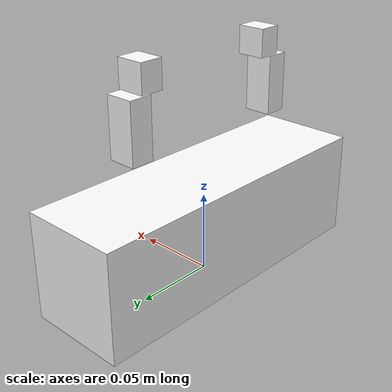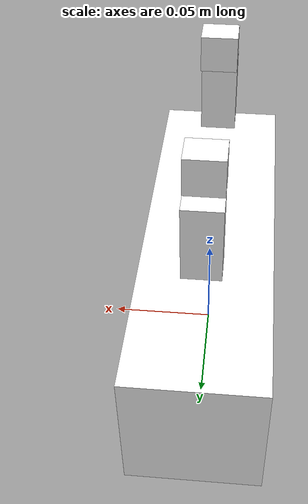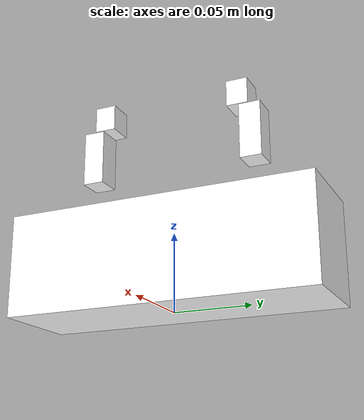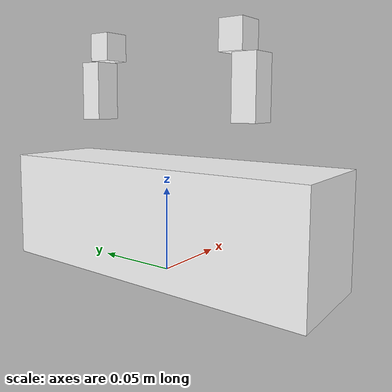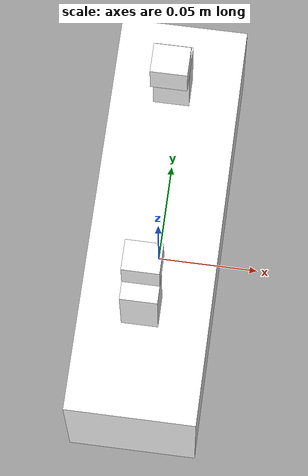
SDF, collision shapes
<?xml version='1.0'?>
<sdf version='1.7'>
  <model name='template_hand_and_block'>
      <link name = "panda_hand">
          <inertial>
              <mass>0.73</mass>
              <pose>0 0.0015244 0.0275912 0 0 0</pose>
              <inertia>
                  <ixx>0.00278560230025</ixx>
                  <ixy>0.0</ixy>
                  <ixz>0.0</ixz>
                  <iyy>0.000400033405336</iyy>
                  <iyz>0.0</iyz>
                  <izz>0.00256378041832</izz>
              </inertia>
          </inertial>
          <self_collide>0</self_collide>
          <kinematic>0</kinematic>
          <visual name = "visual">
              <pose>0 0 0.15 -1.57079632679 0 0</pose>
              <geometry>
                  <mesh>
                      <scale>1 1 1</scale>
                      <uri>../meshes/hand.obj</uri>
                  </mesh>
              </geometry>
              <material>
                  <diffuse>1.0 1.0 1.0 1.0</diffuse>
              </material>
          </visual>
          <collision name="collision">
              <pose>0 0 0.033 0 0 0</pose>
              <laser_retro>0</laser_retro>
              <max_contacts>10</max_contacts>
              <geometry>
                  <box>
                      <size>0.062 0.20 0.066</size>
                  </box>
              </geometry>
              <surface>
                  <friction>
                      <ode>
                          <mu>1</mu>
                          <mu2>1</mu2>
                          <fdir1>0 0 0</fdir1>
                          <slip1>0</slip1>
                          <slip2>0</slip2>
                      </ode>
                      <torsional>
                          <coefficient>1</coefficient>
                          <patch_radius>0</patch_radius>
                          <surface_radius>0</surface_radius>
                          <use_patch_radius>1</use_patch_radius>
                          <ode>
                              <slip>0</slip>
                          </ode>
                      </torsional>
                  </friction>
                  <bounce>
                      <restitution_coefficient>0</restitution_coefficient>
                      <threshold>1e+06</threshold>
                  </bounce>
                  <contact>
                      <collide_without_contact>0</collide_without_contact>
                      <collide_without_contact_bitmask>1</collide_without_contact_bitmask>
                      <collide_bitmask>1</collide_bitmask>
                      <ode>
                          <soft_cfm>0</soft_cfm>
                          <soft_erp>0.2</soft_erp>
                          <kp>1e+13</kp>
                          <kd>1</kd>
                          <max_vel>0.01</max_vel>
                          <min_depth>0</min_depth>
                      </ode>
                      <bullet>
                          <split_impulse>1</split_impulse>
                          <split_impulse_penetration_threshold>-0.01</split_impulse_penetration_threshold>
                          <soft_cfm>0</soft_cfm>
                          <soft_erp>0.2</soft_erp>
                          <kp>1e+13</kp>
                          <kd>1</kd>
                          </bullet>
                  </contact>
              </surface>
          </collision>
      </link>
      <link name="panda_leftfinger">
          <pose>0 0.04 0.09 0 0 0</pose>
          <inertial>
              <mass>0.1</mass>
              <pose>0 0.0145644 0.0227941 0 0 0</pose>
              <inertia>
                  <ixx>3.01220925051e-05</ixx>
                  <ixy>0.0</ixy>
                  <ixz>0.0</ixz>
                  <iyy>2.95873808038e-05</iyy>
                  <iyz>0.0</iyz>
                  <izz>6.95125211657e-06</izz>
              </inertia>
          </inertial>
          <self_collide>0</self_collide>
          <kinematic>0</kinematic>
          <visual name = "visual">
              <pose>0 0 0 -1.57 0 3.1415</pose>
              <geometry>
                  <mesh>
                      <scale>1 1 1</scale>
                      <uri>../meshes/finger.obj</uri>
                  </mesh>
              </geometry>
              <material>
                  <diffuse>1.0 1.0 1.0 1.0</diffuse>
              </material>
          </visual>
          <collision name="tip_collision">
              <pose>0 0.007 0.045 0 0 0</pose>
              <laser_retro>0</laser_retro>
              <max_contacts>10</max_contacts>
              <geometry>
                  <box>
                      <size>0.017 0.014 0.017</size>
                  </box>
              </geometry>
              <surface>
                  <friction>
                      <ode>
                          <mu>1</mu>
                          <mu2>1</mu2>
                          <fdir1>0 0 0</fdir1>
                          <slip1>0</slip1>
                          <slip2>0</slip2>
                      </ode>
                      <torsional>
                          <coefficient>1</coefficient>
                          <patch_radius>0</patch_radius>
                          <surface_radius>0</surface_radius>
                          <use_patch_radius>1</use_patch_radius>
                          <ode>
                              <slip>0</slip>
                          </ode>
                      </torsional>
                  </friction>
                  <bounce>
                      <restitution_coefficient>0</restitution_coefficient>
                      <threshold>1e+06</threshold>
                  </bounce>
                  <contact>
                      <collide_without_contact>0</collide_without_contact>
                      <collide_without_contact_bitmask>1</collide_without_contact_bitmask>
                      <collide_bitmask>1</collide_bitmask>
                      <ode>
                          <soft_cfm>0</soft_cfm>
                          <soft_erp>0.2</soft_erp>
                          <kp>1e+13</kp>
                          <kd>1</kd>
                          <max_vel>0.01</max_vel>
                          <min_depth>0</min_depth>
                      </ode>
                      <bullet>
                          <split_impulse>1</split_impulse>
                          <split_impulse_penetration_threshold>-0.01</split_impulse_penetration_threshold>
                          <soft_cfm>0</soft_cfm>
                          <soft_erp>0.2</soft_erp>
                          <kp>1e+13</kp>
                          <kd>1</kd>
                          </bullet>
                  </contact>
              </surface>
          </collision>
          <collision name="big_collision">
              <pose>0 0.015 0.018 0 0 0</pose>
              <laser_retro>0</laser_retro>
              <max_contacts>10</max_contacts>
              <geometry>
                  <box>
                      <size>0.017 0.014 0.036</size>
                  </box>
              </geometry>
              <surface>
                  <friction>
                      <ode>
                          <mu>1</mu>
                          <mu2>1</mu2>
                          <fdir1>0 0 0</fdir1>
                          <slip1>0</slip1>
                          <slip2>0</slip2>
                      </ode>
                      <torsional>
                          <coefficient>1</coefficient>
                          <patch_radius>0</patch_radius>
                          <surface_radius>0</surface_radius>
                          <use_patch_radius>1</use_patch_radius>
                          <ode>
                              <slip>0</slip>
                          </ode>
                      </torsional>
                  </friction>
                  <bounce>
                      <restitution_coefficient>0</restitution_coefficient>
                      <threshold>1e+06</threshold>
                  </bounce>
                  <contact>
                      <collide_without_contact>0</collide_without_contact>
                      <collide_without_contact_bitmask>1</collide_without_contact_bitmask>
                      <collide_bitmask>1</collide_bitmask>
                      <ode>
                          <soft_cfm>0</soft_cfm>
                          <soft_erp>0.2</soft_erp>
                          <kp>1e+13</kp>
                          <kd>1</kd>
                          <max_vel>0.01</max_vel>
                          <min_depth>0</min_depth>
                      </ode>
                      <bullet>
                          <split_impulse>1</split_impulse>
                          <split_impulse_penetration_threshold>-0.01</split_impulse_penetration_threshold>
                          <soft_cfm>0</soft_cfm>
                          <soft_erp>0.2</soft_erp>
                          <kp>1e+13</kp>
                          <kd>1</kd>
                          </bullet>
                  </contact>
              </surface>
          </collision>
      </link>
      <link name="panda_rightfinger">
          <pose>0 -0.04 0.09 0 0 0</pose>
          <inertial>
              <mass>0.1</mass>
              <pose>0 0.0145644 0.0227941 0 0 0</pose>
              <inertia>
                  <ixx>3.01220925051e-05</ixx>
                  <ixy>0.0</ixy>
                  <ixz>0.0</ixz>
                  <iyy>2.95873808038e-05</iyy>
                  <iyz>0.0</iyz>
                  <izz>6.95125211657e-06</izz>
              </inertia>
          </inertial>
          <self_collide>0</self_collide>
          <kinematic>0</kinematic>
          <visual name = "visual">
              <pose>0 0 0 -1.57079632679 0 0</pose>
              <geometry>
                  <mesh>
                      <scale>1 1 1</scale>
                      <uri>../meshes/finger.obj</uri>
                  </mesh>
              </geometry>
              <material>
                  <diffuse>1.0 1.0 1.0 1.0</diffuse>
              </material>
          </visual>
          <collision name="tip_collision">
              <pose>0 -0.007 0.045 0 0 0</pose>
              <laser_retro>0</laser_retro>
              <max_contacts>10</max_contacts>
              <geometry>
                  <box>
                      <size>0.017 0.014 0.017</size>
                  </box>
              </geometry>
              <surface>
                  <friction>
                      <ode>
                          <mu>1</mu>
                          <mu2>1</mu2>
                          <fdir1>0 0 0</fdir1>
                          <slip1>0</slip1>
                          <slip2>0</slip2>
                      </ode>
                      <torsional>
                          <coefficient>1</coefficient>
                          <patch_radius>0</patch_radius>
                          <surface_radius>0</surface_radius>
                          <use_patch_radius>1</use_patch_radius>
                          <ode>
                              <slip>0</slip>
                          </ode>
                      </torsional>
                  </friction>
                  <bounce>
                      <restitution_coefficient>0</restitution_coefficient>
                      <threshold>1e+06</threshold>
                  </bounce>
                  <contact>
                      <collide_without_contact>0</collide_without_contact>
                      <collide_without_contact_bitmask>1</collide_without_contact_bitmask>
                      <collide_bitmask>1</collide_bitmask>
                      <ode>
                          <soft_cfm>0</soft_cfm>
                          <soft_erp>0.2</soft_erp>
                          <kp>1e+13</kp>
                          <kd>1</kd>
                          <max_vel>0.01</max_vel>
                          <min_depth>0</min_depth>
                      </ode>
                      <bullet>
                          <split_impulse>1</split_impulse>
                          <split_impulse_penetration_threshold>-0.01</split_impulse_penetration_threshold>
                          <soft_cfm>0</soft_cfm>
                          <soft_erp>0.2</soft_erp>
                          <kp>1e+13</kp>
                          <kd>1</kd>
                          </bullet>
                  </contact>
              </surface>
          </collision>
          <collision name="big_collision">
              <pose>0 -0.015 0.018 0 0 0</pose>
              <laser_retro>0</laser_retro>
              <max_contacts>10</max_contacts>
              <geometry>
                  <box>
                      <size>0.017 0.014 0.036</size>
                  </box>
              </geometry>
              <surface>
                  <friction>
                      <ode>
                          <mu>1</mu>
                          <mu2>1</mu2>
                          <fdir1>0 0 0</fdir1>
                          <slip1>0</slip1>
                          <slip2>0</slip2>
                      </ode>
                      <torsional>
                          <coefficient>1</coefficient>
                          <patch_radius>0</patch_radius>
                          <surface_radius>0</surface_radius>
                          <use_patch_radius>1</use_patch_radius>
                          <ode>
                              <slip>0</slip>
                          </ode>
                      </torsional>
                  </friction>
                  <bounce>
                      <restitution_coefficient>0</restitution_coefficient>
                      <threshold>1e+06</threshold>
                  </bounce>
                  <contact>
                      <collide_without_contact>0</collide_without_contact>
                      <collide_without_contact_bitmask>1</collide_without_contact_bitmask>
                      <collide_bitmask>1</collide_bitmask>
                      <ode>
                          <soft_cfm>0</soft_cfm>
                          <soft_erp>0.2</soft_erp>
                          <kp>1e+13</kp>
                          <kd>1</kd>
                          <max_vel>0.01</max_vel>
                          <min_depth>0</min_depth>
                      </ode>
                      <bullet>
                          <split_impulse>1</split_impulse>
                          <split_impulse_penetration_threshold>-0.01</split_impulse_penetration_threshold>
                          <soft_cfm>0</soft_cfm>
                          <soft_erp>0.2</soft_erp>
                          <kp>1e+13</kp>
                          <kd>1</kd>
                          </bullet>
                  </contact>
              </surface>
          </collision>
      </link>
      <joint name="left_finger_sliding_joint" type="fixed">
          <parent>panda_hand</parent>
          <child>panda_leftfinger</child>
      </joint>
      <joint name="right_finger_sliding_joint" type="fixed">
          <parent>panda_hand</parent>
          <child>panda_rightfinger</child>
      </joint>

      <joint name="block_hand_joint" type="fixed">
          <parent>base_link</parent>
          <child>panda_hand</child>
      </joint>

    <!-- start hand -->
    <link name='base_link'>
      <inertial>
        <mass>0.05</mass>
        <inertia>
          <ixx>1.6875e-06</ixx>
          <ixy>0</ixy>
          <ixz>0</ixz>
          <iyy>1.6875e-06</iyy>
          <iyz>0</iyz>
          <izz>1.6875e-06</izz>
        </inertia>
        <pose>0 0 0.01 0 0 0</pose>
      </inertial>
      <pose>0 0 0 0 0 0</pose>
      <visual name='visual'>
        <pose>0 0 0.0225 0 0 0</pose>
        <geometry>
            <box>
                <size>0.045 0.045 0.045</size>
            </box>
        </geometry>
        <material>
          <diffuse>0.1 0.1 1 1</diffuse>
        </material>
      </visual>
      <collision name='collision'>
        <pose>0 0 0.0225 0 0 0</pose>
        <geometry>
            <box>
              <size>0.044 0.044 0.044</size>
            </box>
        </geometry>
      </collision>
      <!-- balls help with collisions -->
    </link>
  </model>
</sdf>
